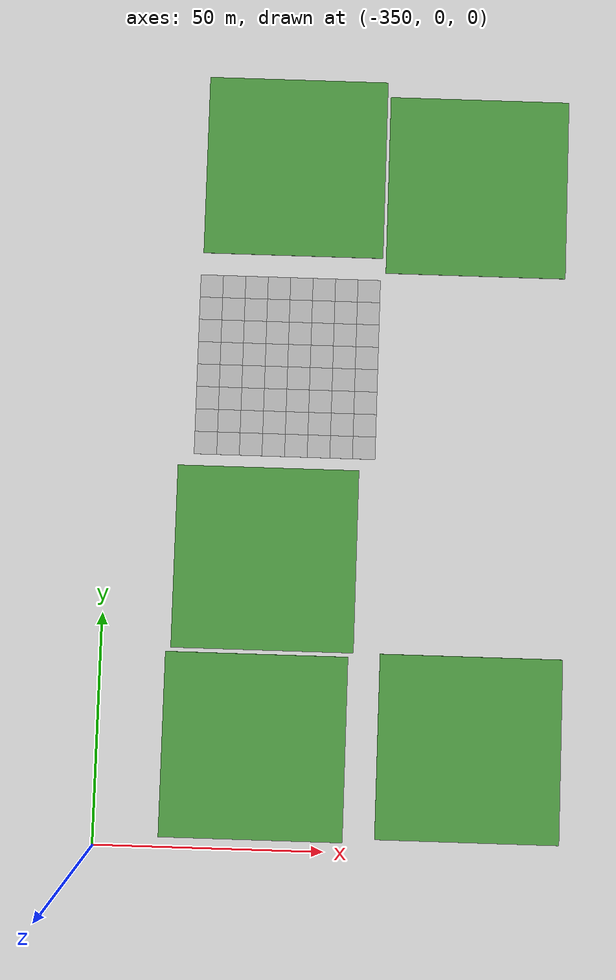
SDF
<sdf version="1.7">
 <world name="default">
  <model name="mud_plane_40x40_20">
   <model name="mud_plane_20x20">
    <model name="mud_plane">
     <static>1</static>
     <link name="link">
      <collision name="collision"><geometry><box><size>10 10 0.1</size></box></geometry></collision>
      <visual name="visual_1">
       <pose>-2.5 2.5 -0.05 0 -0 0</pose>
       <cast_shadows>0</cast_shadows>
       <geometry><box><size>5 5 0.1</size></box></geometry>
       <material>
        <script>
         <uri>model://mud_plane/materials/scripts</uri>
         <uri>model://mud_plane/materials/textures</uri>
         <name>vrc/mud</name>
        </script>
       </material>
      </visual>
      <visual name="visual_2">
       <pose>2.5 2.5 -0.05 0 -0 0</pose>
       <cast_shadows>0</cast_shadows>
       <geometry><box><size>5 5 0.1</size></box></geometry>
       <material>
        <script>
         <uri>model://mud_plane/materials/scripts</uri>
         <uri>model://mud_plane/materials/textures</uri>
         <name>vrc/mud</name>
        </script>
       </material>
      </visual>
      <visual name="visual_3">
       <pose>2.5 -2.5 -0.05 0 -0 0</pose>
       <cast_shadows>0</cast_shadows>
       <geometry><box><size>5 5 0.1</size></box></geometry>
       <material>
        <script>
         <uri>model://mud_plane/materials/scripts</uri>
         <uri>model://mud_plane/materials/textures</uri>
         <name>vrc/mud</name>
        </script>
       </material>
      </visual>
      <visual name="visual_4">
       <pose>-2.5 -2.5 -0.05 0 -0 0</pose>
       <cast_shadows>0</cast_shadows>
       <geometry><box><size>5 5 0.1</size></box></geometry>
       <material>
        <script>
         <uri>model://mud_plane/materials/scripts</uri>
         <uri>model://mud_plane/materials/textures</uri>
         <name>vrc/mud</name>
        </script>
       </material>
      </visual>
     </link>
     <pose>-4.99986 -4.99991 0 0 -0 0</pose>
    </model>
    <model name="mud_plane_0">
     <static>1</static>
     <link name="link">
      <collision name="collision"><geometry><box><size>10 10 0.1</size></box></geometry></collision>
      <visual name="visual_1">
       <pose>-2.5 2.5 -0.05 0 -0 0</pose>
       <cast_shadows>0</cast_shadows>
       <geometry><box><size>5 5 0.1</size></box></geometry>
       <material>
        <script>
         <uri>model://mud_plane/materials/scripts</uri>
         <uri>model://mud_plane/materials/textures</uri>
         <name>vrc/mud</name>
        </script>
       </material>
      </visual>
      <visual name="visual_2">
       <pose>2.5 2.5 -0.05 0 -0 0</pose>
       <cast_shadows>0</cast_shadows>
       <geometry><box><size>5 5 0.1</size></box></geometry>
       <material>
        <script>
         <uri>model://mud_plane/materials/scripts</uri>
         <uri>model://mud_plane/materials/textures</uri>
         <name>vrc/mud</name>
        </script>
       </material>
      </visual>
      <visual name="visual_3">
       <pose>2.5 -2.5 -0.05 0 -0 0</pose>
       <cast_shadows>0</cast_shadows>
       <geometry><box><size>5 5 0.1</size></box></geometry>
       <material>
        <script>
         <uri>model://mud_plane/materials/scripts</uri>
         <uri>model://mud_plane/materials/textures</uri>
         <name>vrc/mud</name>
        </script>
       </material>
      </visual>
      <visual name="visual_4">
       <pose>-2.5 -2.5 -0.05 0 -0 0</pose>
       <cast_shadows>0</cast_shadows>
       <geometry><box><size>5 5 0.1</size></box></geometry>
       <material>
        <script>
         <uri>model://mud_plane/materials/scripts</uri>
         <uri>model://mud_plane/materials/textures</uri>
         <name>vrc/mud</name>
        </script>
       </material>
      </visual>
     </link>
     <pose>-4.99946 4.99954 0 0 -0 0</pose>
    </model>
    <model name="mud_plane_1">
     <static>1</static>
     <link name="link">
      <collision name="collision"><geometry><box><size>10 10 0.1</size></box></geometry></collision>
      <visual name="visual_1">
       <pose>-2.5 2.5 -0.05 0 -0 0</pose>
       <cast_shadows>0</cast_shadows>
       <geometry><box><size>5 5 0.1</size></box></geometry>
       <material>
        <script>
         <uri>model://mud_plane/materials/scripts</uri>
         <uri>model://mud_plane/materials/textures</uri>
         <name>vrc/mud</name>
        </script>
       </material>
      </visual>
      <visual name="visual_2">
       <pose>2.5 2.5 -0.05 0 -0 0</pose>
       <cast_shadows>0</cast_shadows>
       <geometry><box><size>5 5 0.1</size></box></geometry>
       <material>
        <script>
         <uri>model://mud_plane/materials/scripts</uri>
         <uri>model://mud_plane/materials/textures</uri>
         <name>vrc/mud</name>
        </script>
       </material>
      </visual>
      <visual name="visual_3">
       <pose>2.5 -2.5 -0.05 0 -0 0</pose>
       <cast_shadows>0</cast_shadows>
       <geometry><box><size>5 5 0.1</size></box></geometry>
       <material>
        <script>
         <uri>model://mud_plane/materials/scripts</uri>
         <uri>model://mud_plane/materials/textures</uri>
         <name>vrc/mud</name>
        </script>
       </material>
      </visual>
      <visual name="visual_4">
       <pose>-2.5 -2.5 -0.05 0 -0 0</pose>
       <cast_shadows>0</cast_shadows>
       <geometry><box><size>5 5 0.1</size></box></geometry>
       <material>
        <script>
         <uri>model://mud_plane/materials/scripts</uri>
         <uri>model://mud_plane/materials/textures</uri>
         <name>vrc/mud</name>
        </script>
       </material>
      </visual>
     </link>
     <pose>4.99964 -4.99949 0 0 -0 0</pose>
    </model>
    <model name="mud_plane_2">
     <static>1</static>
     <link name="link">
      <collision name="collision"><geometry><box><size>10 10 0.1</size></box></geometry></collision>
      <visual name="visual_1">
       <pose>-2.5 2.5 -0.05 0 -0 0</pose>
       <cast_shadows>0</cast_shadows>
       <geometry><box><size>5 5 0.1</size></box></geometry>
       <material>
        <script>
         <uri>model://mud_plane/materials/scripts</uri>
         <uri>model://mud_plane/materials/textures</uri>
         <name>vrc/mud</name>
        </script>
       </material>
      </visual>
      <visual name="visual_2">
       <pose>2.5 2.5 -0.05 0 -0 0</pose>
       <cast_shadows>0</cast_shadows>
       <geometry><box><size>5 5 0.1</size></box></geometry>
       <material>
        <script>
         <uri>model://mud_plane/materials/scripts</uri>
         <uri>model://mud_plane/materials/textures</uri>
         <name>vrc/mud</name>
        </script>
       </material>
      </visual>
      <visual name="visual_3">
       <pose>2.5 -2.5 -0.05 0 -0 0</pose>
       <cast_shadows>0</cast_shadows>
       <geometry><box><size>5 5 0.1</size></box></geometry>
       <material>
        <script>
         <uri>model://mud_plane/materials/scripts</uri>
         <uri>model://mud_plane/materials/textures</uri>
         <name>vrc/mud</name>
        </script>
       </material>
      </visual>
      <visual name="visual_4">
       <pose>-2.5 -2.5 -0.05 0 -0 0</pose>
       <cast_shadows>0</cast_shadows>
       <geometry><box><size>5 5 0.1</size></box></geometry>
       <material>
        <script>
         <uri>model://mud_plane/materials/scripts</uri>
         <uri>model://mud_plane/materials/textures</uri>
         <name>vrc/mud</name>
        </script>
       </material>
      </visual>
     </link>
     <pose>4.99967 4.99986 0 0 -0 0</pose>
    </model>
    <static>0</static>
    <pose>-9.99895 9.99843 0 0 -0 0</pose>
   </model>
   <model name="mud_plane_20x20_0">
    <model name="mud_plane">
     <static>1</static>
     <link name="link">
      <collision name="collision"><geometry><box><size>10 10 0.1</size></box></geometry></collision>
      <visual name="visual_1">
       <pose>-2.5 2.5 -0.05 0 -0 0</pose>
       <cast_shadows>0</cast_shadows>
       <geometry><box><size>5 5 0.1</size></box></geometry>
       <material>
        <script>
         <uri>model://mud_plane/materials/scripts</uri>
         <uri>model://mud_plane/materials/textures</uri>
         <name>vrc/mud</name>
        </script>
       </material>
      </visual>
      <visual name="visual_2">
       <pose>2.5 2.5 -0.05 0 -0 0</pose>
       <cast_shadows>0</cast_shadows>
       <geometry><box><size>5 5 0.1</size></box></geometry>
       <material>
        <script>
         <uri>model://mud_plane/materials/scripts</uri>
         <uri>model://mud_plane/materials/textures</uri>
         <name>vrc/mud</name>
        </script>
       </material>
      </visual>
      <visual name="visual_3">
       <pose>2.5 -2.5 -0.05 0 -0 0</pose>
       <cast_shadows>0</cast_shadows>
       <geometry><box><size>5 5 0.1</size></box></geometry>
       <material>
        <script>
         <uri>model://mud_plane/materials/scripts</uri>
         <uri>model://mud_plane/materials/textures</uri>
         <name>vrc/mud</name>
        </script>
       </material>
      </visual>
      <visual name="visual_4">
       <pose>-2.5 -2.5 -0.05 0 -0 0</pose>
       <cast_shadows>0</cast_shadows>
       <geometry><box><size>5 5 0.1</size></box></geometry>
       <material>
        <script>
         <uri>model://mud_plane/materials/scripts</uri>
         <uri>model://mud_plane/materials/textures</uri>
         <name>vrc/mud</name>
        </script>
       </material>
      </visual>
     </link>
     <pose>-4.99986 -4.99991 0 0 -0 0</pose>
    </model>
    <model name="mud_plane_0">
     <static>1</static>
     <link name="link">
      <collision name="collision"><geometry><box><size>10 10 0.1</size></box></geometry></collision>
      <visual name="visual_1">
       <pose>-2.5 2.5 -0.05 0 -0 0</pose>
       <cast_shadows>0</cast_shadows>
       <geometry><box><size>5 5 0.1</size></box></geometry>
       <material>
        <script>
         <uri>model://mud_plane/materials/scripts</uri>
         <uri>model://mud_plane/materials/textures</uri>
         <name>vrc/mud</name>
        </script>
       </material>
      </visual>
      <visual name="visual_2">
       <pose>2.5 2.5 -0.05 0 -0 0</pose>
       <cast_shadows>0</cast_shadows>
       <geometry><box><size>5 5 0.1</size></box></geometry>
       <material>
        <script>
         <uri>model://mud_plane/materials/scripts</uri>
         <uri>model://mud_plane/materials/textures</uri>
         <name>vrc/mud</name>
        </script>
       </material>
      </visual>
      <visual name="visual_3">
       <pose>2.5 -2.5 -0.05 0 -0 0</pose>
       <cast_shadows>0</cast_shadows>
       <geometry><box><size>5 5 0.1</size></box></geometry>
       <material>
        <script>
         <uri>model://mud_plane/materials/scripts</uri>
         <uri>model://mud_plane/materials/textures</uri>
         <name>vrc/mud</name>
        </script>
       </material>
      </visual>
      <visual name="visual_4">
       <pose>-2.5 -2.5 -0.05 0 -0 0</pose>
       <cast_shadows>0</cast_shadows>
       <geometry><box><size>5 5 0.1</size></box></geometry>
       <material>
        <script>
         <uri>model://mud_plane/materials/scripts</uri>
         <uri>model://mud_plane/materials/textures</uri>
         <name>vrc/mud</name>
        </script>
       </material>
      </visual>
     </link>
     <pose>-4.99946 4.99954 0 0 -0 0</pose>
    </model>
    <model name="mud_plane_1">
     <static>1</static>
     <link name="link">
      <collision name="collision"><geometry><box><size>10 10 0.1</size></box></geometry></collision>
      <visual name="visual_1">
       <pose>-2.5 2.5 -0.05 0 -0 0</pose>
       <cast_shadows>0</cast_shadows>
       <geometry><box><size>5 5 0.1</size></box></geometry>
       <material>
        <script>
         <uri>model://mud_plane/materials/scripts</uri>
         <uri>model://mud_plane/materials/textures</uri>
         <name>vrc/mud</name>
        </script>
       </material>
      </visual>
      <visual name="visual_2">
       <pose>2.5 2.5 -0.05 0 -0 0</pose>
       <cast_shadows>0</cast_shadows>
       <geometry><box><size>5 5 0.1</size></box></geometry>
       <material>
        <script>
         <uri>model://mud_plane/materials/scripts</uri>
         <uri>model://mud_plane/materials/textures</uri>
         <name>vrc/mud</name>
        </script>
       </material>
      </visual>
      <visual name="visual_3">
       <pose>2.5 -2.5 -0.05 0 -0 0</pose>
       <cast_shadows>0</cast_shadows>
       <geometry><box><size>5 5 0.1</size></box></geometry>
       <material>
        <script>
         <uri>model://mud_plane/materials/scripts</uri>
         <uri>model://mud_plane/materials/textures</uri>
         <name>vrc/mud</name>
        </script>
       </material>
      </visual>
      <visual name="visual_4">
       <pose>-2.5 -2.5 -0.05 0 -0 0</pose>
       <cast_shadows>0</cast_shadows>
       <geometry><box><size>5 5 0.1</size></box></geometry>
       <material>
        <script>
         <uri>model://mud_plane/materials/scripts</uri>
         <uri>model://mud_plane/materials/textures</uri>
         <name>vrc/mud</name>
        </script>
       </material>
      </visual>
     </link>
     <pose>4.99964 -4.99949 0 0 -0 0</pose>
    </model>
    <model name="mud_plane_2">
     <static>1</static>
     <link name="link">
      <collision name="collision"><geometry><box><size>10 10 0.1</size></box></geometry></collision>
      <visual name="visual_1">
       <pose>-2.5 2.5 -0.05 0 -0 0</pose>
       <cast_shadows>0</cast_shadows>
       <geometry><box><size>5 5 0.1</size></box></geometry>
       <material>
        <script>
         <uri>model://mud_plane/materials/scripts</uri>
         <uri>model://mud_plane/materials/textures</uri>
         <name>vrc/mud</name>
        </script>
       </material>
      </visual>
      <visual name="visual_2">
       <pose>2.5 2.5 -0.05 0 -0 0</pose>
       <cast_shadows>0</cast_shadows>
       <geometry><box><size>5 5 0.1</size></box></geometry>
       <material>
        <script>
         <uri>model://mud_plane/materials/scripts</uri>
         <uri>model://mud_plane/materials/textures</uri>
         <name>vrc/mud</name>
        </script>
       </material>
      </visual>
      <visual name="visual_3">
       <pose>2.5 -2.5 -0.05 0 -0 0</pose>
       <cast_shadows>0</cast_shadows>
       <geometry><box><size>5 5 0.1</size></box></geometry>
       <material>
        <script>
         <uri>model://mud_plane/materials/scripts</uri>
         <uri>model://mud_plane/materials/textures</uri>
         <name>vrc/mud</name>
        </script>
       </material>
      </visual>
      <visual name="visual_4">
       <pose>-2.5 -2.5 -0.05 0 -0 0</pose>
       <cast_shadows>0</cast_shadows>
       <geometry><box><size>5 5 0.1</size></box></geometry>
       <material>
        <script>
         <uri>model://mud_plane/materials/scripts</uri>
         <uri>model://mud_plane/materials/textures</uri>
         <name>vrc/mud</name>
        </script>
       </material>
      </visual>
     </link>
     <pose>4.99967 4.99986 0 0 -0 0</pose>
    </model>
    <static>0</static>
    <pose>9.99933 9.9997 0 0 -0 0</pose>
   </model>
   <model name="mud_plane_20x20_1">
    <model name="mud_plane">
     <static>1</static>
     <link name="link">
      <collision name="collision"><geometry><box><size>10 10 0.1</size></box></geometry></collision>
      <visual name="visual_1">
       <pose>-2.5 2.5 -0.05 0 -0 0</pose>
       <cast_shadows>0</cast_shadows>
       <geometry><box><size>5 5 0.1</size></box></geometry>
       <material>
        <script>
         <uri>model://mud_plane/materials/scripts</uri>
         <uri>model://mud_plane/materials/textures</uri>
         <name>vrc/mud</name>
        </script>
       </material>
      </visual>
      <visual name="visual_2">
       <pose>2.5 2.5 -0.05 0 -0 0</pose>
       <cast_shadows>0</cast_shadows>
       <geometry><box><size>5 5 0.1</size></box></geometry>
       <material>
        <script>
         <uri>model://mud_plane/materials/scripts</uri>
         <uri>model://mud_plane/materials/textures</uri>
         <name>vrc/mud</name>
        </script>
       </material>
      </visual>
      <visual name="visual_3">
       <pose>2.5 -2.5 -0.05 0 -0 0</pose>
       <cast_shadows>0</cast_shadows>
       <geometry><box><size>5 5 0.1</size></box></geometry>
       <material>
        <script>
         <uri>model://mud_plane/materials/scripts</uri>
         <uri>model://mud_plane/materials/textures</uri>
         <name>vrc/mud</name>
        </script>
       </material>
      </visual>
      <visual name="visual_4">
       <pose>-2.5 -2.5 -0.05 0 -0 0</pose>
       <cast_shadows>0</cast_shadows>
       <geometry><box><size>5 5 0.1</size></box></geometry>
       <material>
        <script>
         <uri>model://mud_plane/materials/scripts</uri>
         <uri>model://mud_plane/materials/textures</uri>
         <name>vrc/mud</name>
        </script>
       </material>
      </visual>
     </link>
     <pose>-4.99986 -4.99991 0 0 -0 0</pose>
    </model>
    <model name="mud_plane_0">
     <static>1</static>
     <link name="link">
      <collision name="collision"><geometry><box><size>10 10 0.1</size></box></geometry></collision>
      <visual name="visual_1">
       <pose>-2.5 2.5 -0.05 0 -0 0</pose>
       <cast_shadows>0</cast_shadows>
       <geometry><box><size>5 5 0.1</size></box></geometry>
       <material>
        <script>
         <uri>model://mud_plane/materials/scripts</uri>
         <uri>model://mud_plane/materials/textures</uri>
         <name>vrc/mud</name>
        </script>
       </material>
      </visual>
      <visual name="visual_2">
       <pose>2.5 2.5 -0.05 0 -0 0</pose>
       <cast_shadows>0</cast_shadows>
       <geometry><box><size>5 5 0.1</size></box></geometry>
       <material>
        <script>
         <uri>model://mud_plane/materials/scripts</uri>
         <uri>model://mud_plane/materials/textures</uri>
         <name>vrc/mud</name>
        </script>
       </material>
      </visual>
      <visual name="visual_3">
       <pose>2.5 -2.5 -0.05 0 -0 0</pose>
       <cast_shadows>0</cast_shadows>
       <geometry><box><size>5 5 0.1</size></box></geometry>
       <material>
        <script>
         <uri>model://mud_plane/materials/scripts</uri>
         <uri>model://mud_plane/materials/textures</uri>
         <name>vrc/mud</name>
        </script>
       </material>
      </visual>
      <visual name="visual_4">
       <pose>-2.5 -2.5 -0.05 0 -0 0</pose>
       <cast_shadows>0</cast_shadows>
       <geometry><box><size>5 5 0.1</size></box></geometry>
       <material>
        <script>
         <uri>model://mud_plane/materials/scripts</uri>
         <uri>model://mud_plane/materials/textures</uri>
         <name>vrc/mud</name>
        </script>
       </material>
      </visual>
     </link>
     <pose>-4.99946 4.99954 0 0 -0 0</pose>
    </model>
    <model name="mud_plane_1">
     <static>1</static>
     <link name="link">
      <collision name="collision"><geometry><box><size>10 10 0.1</size></box></geometry></collision>
      <visual name="visual_1">
       <pose>-2.5 2.5 -0.05 0 -0 0</pose>
       <cast_shadows>0</cast_shadows>
       <geometry><box><size>5 5 0.1</size></box></geometry>
       <material>
        <script>
         <uri>model://mud_plane/materials/scripts</uri>
         <uri>model://mud_plane/materials/textures</uri>
         <name>vrc/mud</name>
        </script>
       </material>
      </visual>
      <visual name="visual_2">
       <pose>2.5 2.5 -0.05 0 -0 0</pose>
       <cast_shadows>0</cast_shadows>
       <geometry><box><size>5 5 0.1</size></box></geometry>
       <material>
        <script>
         <uri>model://mud_plane/materials/scripts</uri>
         <uri>model://mud_plane/materials/textures</uri>
         <name>vrc/mud</name>
        </script>
       </material>
      </visual>
      <visual name="visual_3">
       <pose>2.5 -2.5 -0.05 0 -0 0</pose>
       <cast_shadows>0</cast_shadows>
       <geometry><box><size>5 5 0.1</size></box></geometry>
       <material>
        <script>
         <uri>model://mud_plane/materials/scripts</uri>
         <uri>model://mud_plane/materials/textures</uri>
         <name>vrc/mud</name>
        </script>
       </material>
      </visual>
      <visual name="visual_4">
       <pose>-2.5 -2.5 -0.05 0 -0 0</pose>
       <cast_shadows>0</cast_shadows>
       <geometry><box><size>5 5 0.1</size></box></geometry>
       <material>
        <script>
         <uri>model://mud_plane/materials/scripts</uri>
         <uri>model://mud_plane/materials/textures</uri>
         <name>vrc/mud</name>
        </script>
       </material>
      </visual>
     </link>
     <pose>4.99964 -4.99949 0 0 -0 0</pose>
    </model>
    <model name="mud_plane_2">
     <static>1</static>
     <link name="link">
      <collision name="collision"><geometry><box><size>10 10 0.1</size></box></geometry></collision>
      <visual name="visual_1">
       <pose>-2.5 2.5 -0.05 0 -0 0</pose>
       <cast_shadows>0</cast_shadows>
       <geometry><box><size>5 5 0.1</size></box></geometry>
       <material>
        <script>
         <uri>model://mud_plane/materials/scripts</uri>
         <uri>model://mud_plane/materials/textures</uri>
         <name>vrc/mud</name>
        </script>
       </material>
      </visual>
      <visual name="visual_2">
       <pose>2.5 2.5 -0.05 0 -0 0</pose>
       <cast_shadows>0</cast_shadows>
       <geometry><box><size>5 5 0.1</size></box></geometry>
       <material>
        <script>
         <uri>model://mud_plane/materials/scripts</uri>
         <uri>model://mud_plane/materials/textures</uri>
         <name>vrc/mud</name>
        </script>
       </material>
      </visual>
      <visual name="visual_3">
       <pose>2.5 -2.5 -0.05 0 -0 0</pose>
       <cast_shadows>0</cast_shadows>
       <geometry><box><size>5 5 0.1</size></box></geometry>
       <material>
        <script>
         <uri>model://mud_plane/materials/scripts</uri>
         <uri>model://mud_plane/materials/textures</uri>
         <name>vrc/mud</name>
        </script>
       </material>
      </visual>
      <visual name="visual_4">
       <pose>-2.5 -2.5 -0.05 0 -0 0</pose>
       <cast_shadows>0</cast_shadows>
       <geometry><box><size>5 5 0.1</size></box></geometry>
       <material>
        <script>
         <uri>model://mud_plane/materials/scripts</uri>
         <uri>model://mud_plane/materials/textures</uri>
         <name>vrc/mud</name>
        </script>
       </material>
      </visual>
     </link>
     <pose>4.99967 4.99986 0 0 -0 0</pose>
    </model>
    <static>0</static>
    <pose>9.9993 -9.99877 0 0 -0 0</pose>
   </model>
   <model name="mud_plane_20x20_2">
    <model name="mud_plane">
     <static>1</static>
     <link name="link">
      <collision name="collision"><geometry><box><size>10 10 0.1</size></box></geometry></collision>
      <visual name="visual_1">
       <pose>-2.5 2.5 -0.05 0 -0 0</pose>
       <cast_shadows>0</cast_shadows>
       <geometry><box><size>5 5 0.1</size></box></geometry>
       <material>
        <script>
         <uri>model://mud_plane/materials/scripts</uri>
         <uri>model://mud_plane/materials/textures</uri>
         <name>vrc/mud</name>
        </script>
       </material>
      </visual>
      <visual name="visual_2">
       <pose>2.5 2.5 -0.05 0 -0 0</pose>
       <cast_shadows>0</cast_shadows>
       <geometry><box><size>5 5 0.1</size></box></geometry>
       <material>
        <script>
         <uri>model://mud_plane/materials/scripts</uri>
         <uri>model://mud_plane/materials/textures</uri>
         <name>vrc/mud</name>
        </script>
       </material>
      </visual>
      <visual name="visual_3">
       <pose>2.5 -2.5 -0.05 0 -0 0</pose>
       <cast_shadows>0</cast_shadows>
       <geometry><box><size>5 5 0.1</size></box></geometry>
       <material>
        <script>
         <uri>model://mud_plane/materials/scripts</uri>
         <uri>model://mud_plane/materials/textures</uri>
         <name>vrc/mud</name>
        </script>
       </material>
      </visual>
      <visual name="visual_4">
       <pose>-2.5 -2.5 -0.05 0 -0 0</pose>
       <cast_shadows>0</cast_shadows>
       <geometry><box><size>5 5 0.1</size></box></geometry>
       <material>
        <script>
         <uri>model://mud_plane/materials/scripts</uri>
         <uri>model://mud_plane/materials/textures</uri>
         <name>vrc/mud</name>
        </script>
       </material>
      </visual>
     </link>
     <pose>-4.99986 -4.99991 0 0 -0 0</pose>
    </model>
    <model name="mud_plane_0">
     <static>1</static>
     <link name="link">
      <collision name="collision"><geometry><box><size>10 10 0.1</size></box></geometry></collision>
      <visual name="visual_1">
       <pose>-2.5 2.5 -0.05 0 -0 0</pose>
       <cast_shadows>0</cast_shadows>
       <geometry><box><size>5 5 0.1</size></box></geometry>
       <material>
        <script>
         <uri>model://mud_plane/materials/scripts</uri>
         <uri>model://mud_plane/materials/textures</uri>
         <name>vrc/mud</name>
        </script>
       </material>
      </visual>
      <visual name="visual_2">
       <pose>2.5 2.5 -0.05 0 -0 0</pose>
       <cast_shadows>0</cast_shadows>
       <geometry><box><size>5 5 0.1</size></box></geometry>
       <material>
        <script>
         <uri>model://mud_plane/materials/scripts</uri>
         <uri>model://mud_plane/materials/textures</uri>
         <name>vrc/mud</name>
        </script>
       </material>
      </visual>
      <visual name="visual_3">
       <pose>2.5 -2.5 -0.05 0 -0 0</pose>
       <cast_shadows>0</cast_shadows>
       <geometry><box><size>5 5 0.1</size></box></geometry>
       <material>
        <script>
         <uri>model://mud_plane/materials/scripts</uri>
         <uri>model://mud_plane/materials/textures</uri>
         <name>vrc/mud</name>
        </script>
       </material>
      </visual>
      <visual name="visual_4">
       <pose>-2.5 -2.5 -0.05 0 -0 0</pose>
       <cast_shadows>0</cast_shadows>
       <geometry><box><size>5 5 0.1</size></box></geometry>
       <material>
        <script>
         <uri>model://mud_plane/materials/scripts</uri>
         <uri>model://mud_plane/materials/textures</uri>
         <name>vrc/mud</name>
        </script>
       </material>
      </visual>
     </link>
     <pose>-4.99946 4.99954 0 0 -0 0</pose>
    </model>
    <model name="mud_plane_1">
     <static>1</static>
     <link name="link">
      <collision name="collision"><geometry><box><size>10 10 0.1</size></box></geometry></collision>
      <visual name="visual_1">
       <pose>-2.5 2.5 -0.05 0 -0 0</pose>
       <cast_shadows>0</cast_shadows>
       <geometry><box><size>5 5 0.1</size></box></geometry>
       <material>
        <script>
         <uri>model://mud_plane/materials/scripts</uri>
         <uri>model://mud_plane/materials/textures</uri>
         <name>vrc/mud</name>
        </script>
       </material>
      </visual>
      <visual name="visual_2">
       <pose>2.5 2.5 -0.05 0 -0 0</pose>
       <cast_shadows>0</cast_shadows>
       <geometry><box><size>5 5 0.1</size></box></geometry>
       <material>
        <script>
         <uri>model://mud_plane/materials/scripts</uri>
         <uri>model://mud_plane/materials/textures</uri>
         <name>vrc/mud</name>
        </script>
       </material>
      </visual>
      <visual name="visual_3">
       <pose>2.5 -2.5 -0.05 0 -0 0</pose>
       <cast_shadows>0</cast_shadows>
       <geometry><box><size>5 5 0.1</size></box></geometry>
       <material>
        <script>
         <uri>model://mud_plane/materials/scripts</uri>
         <uri>model://mud_plane/materials/textures</uri>
         <name>vrc/mud</name>
        </script>
       </material>
      </visual>
      <visual name="visual_4">
       <pose>-2.5 -2.5 -0.05 0 -0 0</pose>
       <cast_shadows>0</cast_shadows>
       <geometry><box><size>5 5 0.1</size></box></geometry>
       <material>
        <script>
         <uri>model://mud_plane/materials/scripts</uri>
         <uri>model://mud_plane/materials/textures</uri>
         <name>vrc/mud</name>
        </script>
       </material>
      </visual>
     </link>
     <pose>4.99964 -4.99949 0 0 -0 0</pose>
    </model>
    <model name="mud_plane_2">
     <static>1</static>
     <link name="link">
      <collision name="collision"><geometry><box><size>10 10 0.1</size></box></geometry></collision>
      <visual name="visual_1">
       <pose>-2.5 2.5 -0.05 0 -0 0</pose>
       <cast_shadows>0</cast_shadows>
       <geometry><box><size>5 5 0.1</size></box></geometry>
       <material>
        <script>
         <uri>model://mud_plane/materials/scripts</uri>
         <uri>model://mud_plane/materials/textures</uri>
         <name>vrc/mud</name>
        </script>
       </material>
      </visual>
      <visual name="visual_2">
       <pose>2.5 2.5 -0.05 0 -0 0</pose>
       <cast_shadows>0</cast_shadows>
       <geometry><box><size>5 5 0.1</size></box></geometry>
       <material>
        <script>
         <uri>model://mud_plane/materials/scripts</uri>
         <uri>model://mud_plane/materials/textures</uri>
         <name>vrc/mud</name>
        </script>
       </material>
      </visual>
      <visual name="visual_3">
       <pose>2.5 -2.5 -0.05 0 -0 0</pose>
       <cast_shadows>0</cast_shadows>
       <geometry><box><size>5 5 0.1</size></box></geometry>
       <material>
        <script>
         <uri>model://mud_plane/materials/scripts</uri>
         <uri>model://mud_plane/materials/textures</uri>
         <name>vrc/mud</name>
        </script>
       </material>
      </visual>
      <visual name="visual_4">
       <pose>-2.5 -2.5 -0.05 0 -0 0</pose>
       <cast_shadows>0</cast_shadows>
       <geometry><box><size>5 5 0.1</size></box></geometry>
       <material>
        <script>
         <uri>model://mud_plane/materials/scripts</uri>
         <uri>model://mud_plane/materials/textures</uri>
         <name>vrc/mud</name>
        </script>
       </material>
      </visual>
     </link>
     <pose>4.99967 4.99986 0 0 -0 0</pose>
    </model>
    <static>0</static>
    <pose>-9.99969 -9.99935 0 0 -0 0</pose>
   </model>
   <static>0</static>
   <pose>-311.381 105.548 0 0 -0 0</pose>
  </model>
  <model name="grass_plane_40x40_15">
   <pose>-270.232 147.175 -0.05 0 -0 0</pose>
   <static>1</static>
   <link name="link">
    <collision name="collision"><geometry><box><size>40 40 0.1</size></box></geometry></collision>
    <visual name="grass">
     <cast_shadows>0</cast_shadows>
     <geometry><box><size>40 40 0.1</size></box></geometry>
     <material>
      <script><uri>file://media/materials/scripts/gazebo.material</uri><name>Gazebo/Grass</name></script>
     </material>
    </visual>
   </link>
  </model>
  <model name="grass_plane_40x40_16">
   <pose>-310.963 150.487 -0.05 0 -0 0</pose>
   <static>1</static>
   <link name="link">
    <collision name="collision"><geometry><box><size>40 40 0.1</size></box></geometry></collision>
    <visual name="grass">
     <cast_shadows>0</cast_shadows>
     <geometry><box><size>40 40 0.1</size></box></geometry>
     <material>
      <script><uri>file://media/materials/scripts/gazebo.material</uri><name>Gazebo/Grass</name></script>
     </material>
    </visual>
   </link>
  </model>
  <model name="grass_plane_40x40_19">
   <pose>-314.82 62.9907 -0.05 0 -0 0</pose>
   <static>1</static>
   <link name="link">
    <collision name="collision"><geometry><box><size>40 40 0.1</size></box></geometry></collision>
    <visual name="grass">
     <cast_shadows>0</cast_shadows>
     <geometry><box><size>40 40 0.1</size></box></geometry>
     <material>
      <script><uri>file://media/materials/scripts/gazebo.material</uri><name>Gazebo/Grass</name></script>
     </material>
    </visual>
   </link>
  </model>
  <model name="grass_plane_40x40_20">
   <pose>-315.946 22.0938 -0.05 0 -0 0</pose>
   <static>1</static>
   <link name="link">
    <collision name="collision"><geometry><box><size>40 40 0.1</size></box></geometry></collision>
    <visual name="grass">
     <cast_shadows>0</cast_shadows>
     <geometry><box><size>40 40 0.1</size></box></geometry>
     <material>
      <script><uri>file://media/materials/scripts/gazebo.material</uri><name>Gazebo/Grass</name></script>
     </material>
    </visual>
   </link>
  </model>
  <model name="grass_plane_40x40_21">
   <pose>-268.967 22.9977 -0.05 0 -0 0</pose>
   <static>1</static>
   <link name="link">
    <collision name="collision"><geometry><box><size>40 40 0.1</size></box></geometry></collision>
    <visual name="grass">
     <cast_shadows>0</cast_shadows>
     <geometry><box><size>40 40 0.1</size></box></geometry>
     <material>
      <script><uri>file://media/materials/scripts/gazebo.material</uri><name>Gazebo/Grass</name></script>
     </material>
    </visual>
   </link>
  </model>
 </world>
</sdf>
